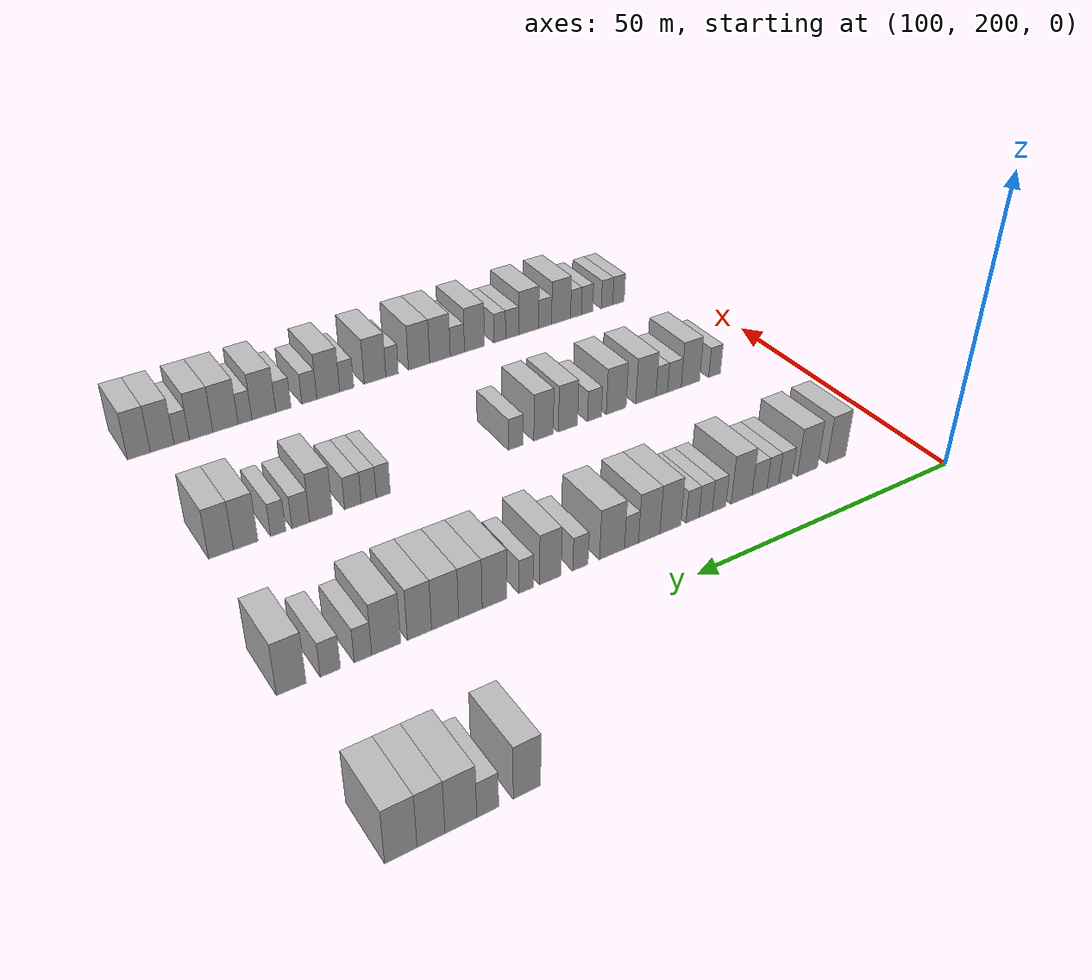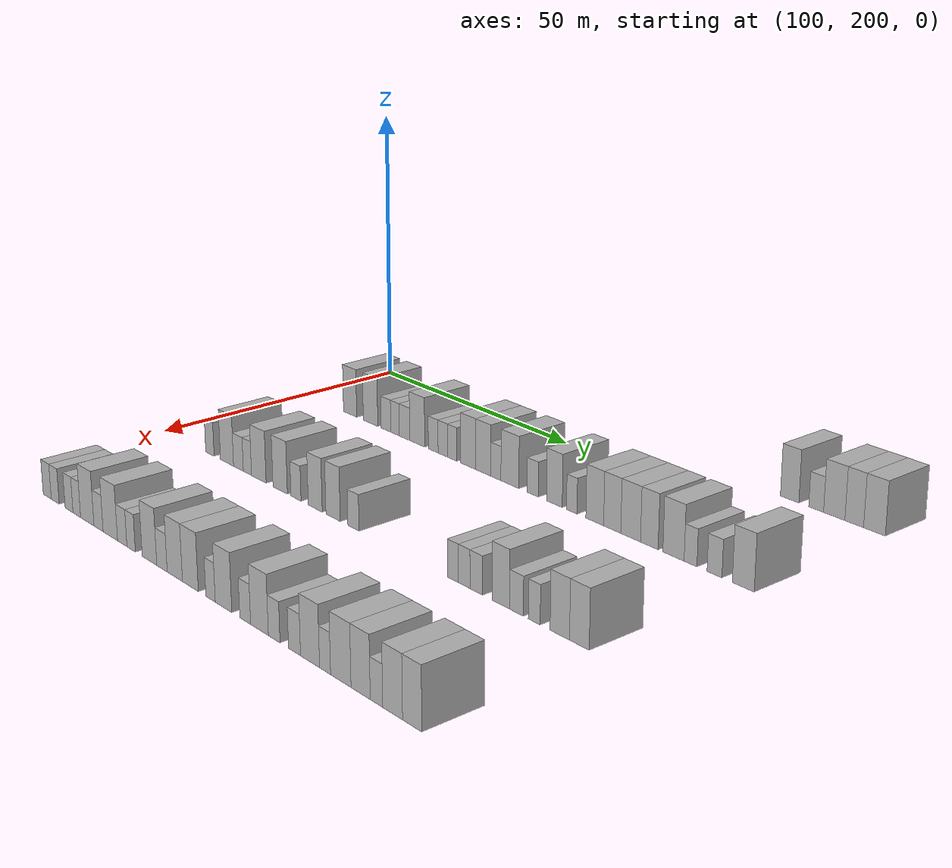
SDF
<sdf version="1.6">
 <world name="default">
  <model name="building_665">
   <static>1</static>
   <pose>85.0000 291.4615 0 0.000000 0.000000 0.000000</pose>
   <link name="link">
    <pose>0 0 4.50 0 0 0</pose>
    <collision name="collision"><geometry><box><size>10.0000 3.8084 9.0000</size></box></geometry></collision>
    <visual name="visual">
     <cast_shadows>0</cast_shadows>
     <geometry><box><size>10.0000 3.8084 9.0000</size></box></geometry>
     <material>
      <script>
       <uri>model://HANNAS_wall/materials/scripts</uri>
       <uri>model://HANNAS_wall/materials/textures</uri>
       <name>vrc/HANNAS_wall</name>
      </script>
     </material>
    </visual>
   </link>
  </model>
  <model name="building_666">
   <static>1</static>
   <pose>85.0000 296.8567 0 0.000000 0.000000 0.000000</pose>
   <link name="link">
    <pose>0 0 3.00 0 0 0</pose>
    <collision name="collision"><geometry><box><size>10.0000 2.9822 6.0000</size></box></geometry></collision>
    <visual name="visual">
     <cast_shadows>0</cast_shadows>
     <geometry><box><size>10.0000 2.9822 6.0000</size></box></geometry>
     <material>
      <script>
       <uri>model://HANNAS_wall/materials/scripts</uri>
       <uri>model://HANNAS_wall/materials/textures</uri>
       <name>vrc/HANNAS_wall</name>
      </script>
     </material>
    </visual>
   </link>
  </model>
  <model name="building_667">
   <static>1</static>
   <pose>85.0000 300.4469 0 0.000000 0.000000 0.000000</pose>
   <link name="link">
    <pose>0 0 4.50 0 0 0</pose>
    <collision name="collision"><geometry><box><size>10.0000 4.1982 9.0000</size></box></geometry></collision>
    <visual name="visual">
     <cast_shadows>0</cast_shadows>
     <geometry><box><size>10.0000 4.1982 9.0000</size></box></geometry>
     <material>
      <script>
       <uri>model://HANNAS_wall/materials/scripts</uri>
       <uri>model://HANNAS_wall/materials/textures</uri>
       <name>vrc/HANNAS_wall</name>
      </script>
     </material>
    </visual>
   </link>
  </model>
  <model name="building_668">
   <static>1</static>
   <pose>85.0000 304.3509 0 0.000000 0.000000 0.000000</pose>
   <link name="link">
    <pose>0 0 4.50 0 0 0</pose>
    <collision name="collision"><geometry><box><size>10.0000 3.6098 9.0000</size></box></geometry></collision>
    <visual name="visual">
     <cast_shadows>0</cast_shadows>
     <geometry><box><size>10.0000 3.6098 9.0000</size></box></geometry>
     <material>
      <script>
       <uri>model://HANNAS_wall/materials/scripts</uri>
       <uri>model://HANNAS_wall/materials/textures</uri>
       <name>vrc/HANNAS_wall</name>
      </script>
     </material>
    </visual>
   </link>
  </model>
  <model name="building_669">
   <static>1</static>
   <pose>85.0000 308.2140 0 0.000000 0.000000 0.000000</pose>
   <link name="link">
    <pose>0 0 4.50 0 0 0</pose>
    <collision name="collision"><geometry><box><size>10.0000 4.1164 9.0000</size></box></geometry></collision>
    <visual name="visual">
     <cast_shadows>0</cast_shadows>
     <geometry><box><size>10.0000 4.1164 9.0000</size></box></geometry>
     <material>
      <script>
       <uri>model://HANNAS_wall/materials/scripts</uri>
       <uri>model://HANNAS_wall/materials/textures</uri>
       <name>vrc/HANNAS_wall</name>
      </script>
     </material>
    </visual>
   </link>
  </model>
  <model name="building_886">
   <static>1</static>
   <pose>115.0000 214.0622 0 0.000000 0.000000 0.000000</pose>
   <link name="link">
    <pose>0 0 4.50 0 0 0</pose>
    <collision name="collision"><geometry><box><size>10.0000 4.0102 9.0000</size></box></geometry></collision>
    <visual name="visual">
     <cast_shadows>0</cast_shadows>
     <geometry><box><size>10.0000 4.0102 9.0000</size></box></geometry>
     <material>
      <script>
       <uri>model://HANNAS_wall/materials/scripts</uri>
       <uri>model://HANNAS_wall/materials/textures</uri>
       <name>vrc/HANNAS_wall</name>
      </script>
     </material>
    </visual>
   </link>
  </model>
  <model name="building_887">
   <static>1</static>
   <pose>115.0000 220.2074 0 0.000000 0.000000 0.000000</pose>
   <link name="link">
    <pose>0 0 4.50 0 0 0</pose>
    <collision name="collision"><geometry><box><size>10.0000 4.2802 9.0000</size></box></geometry></collision>
    <visual name="visual">
     <cast_shadows>0</cast_shadows>
     <geometry><box><size>10.0000 4.2802 9.0000</size></box></geometry>
     <material>
      <script>
       <uri>model://HANNAS_wall/materials/scripts</uri>
       <uri>model://HANNAS_wall/materials/textures</uri>
       <name>vrc/HANNAS_wall</name>
      </script>
     </material>
    </visual>
   </link>
  </model>
  <model name="building_888">
   <static>1</static>
   <pose>115.0000 224.7398 0 0.000000 0.000000 0.000000</pose>
   <link name="link">
    <pose>0 0 3.00 0 0 0</pose>
    <collision name="collision"><geometry><box><size>10.0000 2.7845 6.0000</size></box></geometry></collision>
    <visual name="visual">
     <cast_shadows>0</cast_shadows>
     <geometry><box><size>10.0000 2.7845 6.0000</size></box></geometry>
     <material>
      <script>
       <uri>model://HANNAS_wall/materials/scripts</uri>
       <uri>model://HANNAS_wall/materials/textures</uri>
       <name>vrc/HANNAS_wall</name>
      </script>
     </material>
    </visual>
   </link>
  </model>
  <model name="building_889">
   <static>1</static>
   <pose>115.0000 227.3388 0 0.000000 0.000000 0.000000</pose>
   <link name="link">
    <pose>0 0 3.00 0 0 0</pose>
    <collision name="collision"><geometry><box><size>10.0000 2.4136 6.0000</size></box></geometry></collision>
    <visual name="visual">
     <cast_shadows>0</cast_shadows>
     <geometry><box><size>10.0000 2.4136 6.0000</size></box></geometry>
     <material>
      <script>
       <uri>model://HANNAS_wall/materials/scripts</uri>
       <uri>model://HANNAS_wall/materials/textures</uri>
       <name>vrc/HANNAS_wall</name>
      </script>
     </material>
    </visual>
   </link>
  </model>
  <model name="building_890">
   <static>1</static>
   <pose>115.0000 230.0455 0 0.000000 0.000000 0.000000</pose>
   <link name="link">
    <pose>0 0 3.00 0 0 0</pose>
    <collision name="collision"><geometry><box><size>10.0000 2.9999 6.0000</size></box></geometry></collision>
    <visual name="visual">
     <cast_shadows>0</cast_shadows>
     <geometry><box><size>10.0000 2.9999 6.0000</size></box></geometry>
     <material>
      <script>
       <uri>model://HANNAS_wall/materials/scripts</uri>
       <uri>model://HANNAS_wall/materials/textures</uri>
       <name>vrc/HANNAS_wall</name>
      </script>
     </material>
    </visual>
   </link>
  </model>
  <model name="building_891">
   <static>1</static>
   <pose>115.0000 233.6323 0 0.000000 0.000000 0.000000</pose>
   <link name="link">
    <pose>0 0 4.50 0 0 0</pose>
    <collision name="collision"><geometry><box><size>10.0000 4.1736 9.0000</size></box></geometry></collision>
    <visual name="visual">
     <cast_shadows>0</cast_shadows>
     <geometry><box><size>10.0000 4.1736 9.0000</size></box></geometry>
     <material>
      <script>
       <uri>model://HANNAS_wall/materials/scripts</uri>
       <uri>model://HANNAS_wall/materials/textures</uri>
       <name>vrc/HANNAS_wall</name>
      </script>
     </material>
    </visual>
   </link>
  </model>
  <model name="building_892">
   <static>1</static>
   <pose>115.0000 238.0502 0 0.000000 0.000000 0.000000</pose>
   <link name="link">
    <pose>0 0 3.00 0 0 0</pose>
    <collision name="collision"><geometry><box><size>10.0000 2.6622 6.0000</size></box></geometry></collision>
    <visual name="visual">
     <cast_shadows>0</cast_shadows>
     <geometry><box><size>10.0000 2.6622 6.0000</size></box></geometry>
     <material>
      <script>
       <uri>model://HANNAS_wall/materials/scripts</uri>
       <uri>model://HANNAS_wall/materials/textures</uri>
       <name>vrc/HANNAS_wall</name>
      </script>
     </material>
    </visual>
   </link>
  </model>
  <model name="building_893">
   <static>1</static>
   <pose>115.0000 240.6500 0 0.000000 0.000000 0.000000</pose>
   <link name="link">
    <pose>0 0 3.00 0 0 0</pose>
    <collision name="collision"><geometry><box><size>10.0000 2.5374 6.0000</size></box></geometry></collision>
    <visual name="visual">
     <cast_shadows>0</cast_shadows>
     <geometry><box><size>10.0000 2.5374 6.0000</size></box></geometry>
     <material>
      <script>
       <uri>model://HANNAS_wall/materials/scripts</uri>
       <uri>model://HANNAS_wall/materials/textures</uri>
       <name>vrc/HANNAS_wall</name>
      </script>
     </material>
    </visual>
   </link>
  </model>
  <model name="building_894">
   <static>1</static>
   <pose>115.0000 243.1583 0 0.000000 0.000000 0.000000</pose>
   <link name="link">
    <pose>0 0 3.00 0 0 0</pose>
    <collision name="collision"><geometry><box><size>10.0000 2.4791 6.0000</size></box></geometry></collision>
    <visual name="visual">
     <cast_shadows>0</cast_shadows>
     <geometry><box><size>10.0000 2.4791 6.0000</size></box></geometry>
     <material>
      <script>
       <uri>model://HANNAS_wall/materials/scripts</uri>
       <uri>model://HANNAS_wall/materials/textures</uri>
       <name>vrc/HANNAS_wall</name>
      </script>
     </material>
    </visual>
   </link>
  </model>
  <model name="building_895">
   <static>1</static>
   <pose>115.0000 247.3582 0 0.000000 0.000000 0.000000</pose>
   <link name="link">
    <pose>0 0 4.50 0 0 0</pose>
    <collision name="collision"><geometry><box><size>10.0000 3.9207 9.0000</size></box></geometry></collision>
    <visual name="visual">
     <cast_shadows>0</cast_shadows>
     <geometry><box><size>10.0000 3.9207 9.0000</size></box></geometry>
     <material>
      <script>
       <uri>model://HANNAS_wall/materials/scripts</uri>
       <uri>model://HANNAS_wall/materials/textures</uri>
       <name>vrc/HANNAS_wall</name>
      </script>
     </material>
    </visual>
   </link>
  </model>
  <model name="building_896">
   <static>1</static>
   <pose>115.0000 251.2783 0 0.000000 0.000000 0.000000</pose>
   <link name="link">
    <pose>0 0 4.50 0 0 0</pose>
    <collision name="collision"><geometry><box><size>10.0000 3.9194 9.0000</size></box></geometry></collision>
    <visual name="visual">
     <cast_shadows>0</cast_shadows>
     <geometry><box><size>10.0000 3.9194 9.0000</size></box></geometry>
     <material>
      <script>
       <uri>model://HANNAS_wall/materials/scripts</uri>
       <uri>model://HANNAS_wall/materials/textures</uri>
       <name>vrc/HANNAS_wall</name>
      </script>
     </material>
    </visual>
   </link>
  </model>
  <model name="building_897">
   <static>1</static>
   <pose>115.0000 254.4890 0 0.000000 0.000000 0.000000</pose>
   <link name="link">
    <pose>0 0 3.00 0 0 0</pose>
    <collision name="collision"><geometry><box><size>10.0000 2.5019 6.0000</size></box></geometry></collision>
    <visual name="visual">
     <cast_shadows>0</cast_shadows>
     <geometry><box><size>10.0000 2.5019 6.0000</size></box></geometry>
     <material>
      <script>
       <uri>model://HANNAS_wall/materials/scripts</uri>
       <uri>model://HANNAS_wall/materials/textures</uri>
       <name>vrc/HANNAS_wall</name>
      </script>
     </material>
    </visual>
   </link>
  </model>
  <model name="building_898">
   <static>1</static>
   <pose>115.0000 257.9615 0 0.000000 0.000000 0.000000</pose>
   <link name="link">
    <pose>0 0 4.50 0 0 0</pose>
    <collision name="collision"><geometry><box><size>10.0000 4.4431 9.0000</size></box></geometry></collision>
    <visual name="visual">
     <cast_shadows>0</cast_shadows>
     <geometry><box><size>10.0000 4.4431 9.0000</size></box></geometry>
     <material>
      <script>
       <uri>model://HANNAS_wall/materials/scripts</uri>
       <uri>model://HANNAS_wall/materials/textures</uri>
       <name>vrc/HANNAS_wall</name>
      </script>
     </material>
    </visual>
   </link>
  </model>
  <model name="building_899">
   <static>1</static>
   <pose>115.0000 263.5110 0 0.000000 0.000000 0.000000</pose>
   <link name="link">
    <pose>0 0 3.00 0 0 0</pose>
    <collision name="collision"><geometry><box><size>10.0000 2.6561 6.0000</size></box></geometry></collision>
    <visual name="visual">
     <cast_shadows>0</cast_shadows>
     <geometry><box><size>10.0000 2.6561 6.0000</size></box></geometry>
     <material>
      <script>
       <uri>model://HANNAS_wall/materials/scripts</uri>
       <uri>model://HANNAS_wall/materials/textures</uri>
       <name>vrc/HANNAS_wall</name>
      </script>
     </material>
    </visual>
   </link>
  </model>
  <model name="building_900">
   <static>1</static>
   <pose>115.0000 268.6723 0 0.000000 0.000000 0.000000</pose>
   <link name="link">
    <pose>0 0 4.50 0 0 0</pose>
    <collision name="collision"><geometry><box><size>10.0000 3.6664 9.0000</size></box></geometry></collision>
    <visual name="visual">
     <cast_shadows>0</cast_shadows>
     <geometry><box><size>10.0000 3.6664 9.0000</size></box></geometry>
     <material>
      <script>
       <uri>model://HANNAS_wall/materials/scripts</uri>
       <uri>model://HANNAS_wall/materials/textures</uri>
       <name>vrc/HANNAS_wall</name>
      </script>
     </material>
    </visual>
   </link>
  </model>
  <model name="building_901">
   <static>1</static>
   <pose>115.0000 272.7105 0 0.000000 0.000000 0.000000</pose>
   <link name="link">
    <pose>0 0 3.00 0 0 0</pose>
    <collision name="collision"><geometry><box><size>10.0000 2.4101 6.0000</size></box></geometry></collision>
    <visual name="visual">
     <cast_shadows>0</cast_shadows>
     <geometry><box><size>10.0000 2.4101 6.0000</size></box></geometry>
     <material>
      <script>
       <uri>model://HANNAS_wall/materials/scripts</uri>
       <uri>model://HANNAS_wall/materials/textures</uri>
       <name>vrc/HANNAS_wall</name>
      </script>
     </material>
    </visual>
   </link>
  </model>
  <model name="building_902">
   <static>1</static>
   <pose>115.0000 277.8994 0 0.000000 0.000000 0.000000</pose>
   <link name="link">
    <pose>0 0 4.50 0 0 0</pose>
    <collision name="collision"><geometry><box><size>10.0000 3.9677 9.0000</size></box></geometry></collision>
    <visual name="visual">
     <cast_shadows>0</cast_shadows>
     <geometry><box><size>10.0000 3.9677 9.0000</size></box></geometry>
     <material>
      <script>
       <uri>model://HANNAS_wall/materials/scripts</uri>
       <uri>model://HANNAS_wall/materials/textures</uri>
       <name>vrc/HANNAS_wall</name>
      </script>
     </material>
    </visual>
   </link>
  </model>
  <model name="building_903">
   <static>1</static>
   <pose>115.0000 281.7571 0 0.000000 0.000000 0.000000</pose>
   <link name="link">
    <pose>0 0 4.50 0 0 0</pose>
    <collision name="collision"><geometry><box><size>10.0000 3.7477 9.0000</size></box></geometry></collision>
    <visual name="visual">
     <cast_shadows>0</cast_shadows>
     <geometry><box><size>10.0000 3.7477 9.0000</size></box></geometry>
     <material>
      <script>
       <uri>model://HANNAS_wall/materials/scripts</uri>
       <uri>model://HANNAS_wall/materials/textures</uri>
       <name>vrc/HANNAS_wall</name>
      </script>
     </material>
    </visual>
   </link>
  </model>
  <model name="building_904">
   <static>1</static>
   <pose>115.0000 285.7416 0 0.000000 0.000000 0.000000</pose>
   <link name="link">
    <pose>0 0 4.50 0 0 0</pose>
    <collision name="collision"><geometry><box><size>10.0000 4.2212 9.0000</size></box></geometry></collision>
    <visual name="visual">
     <cast_shadows>0</cast_shadows>
     <geometry><box><size>10.0000 4.2212 9.0000</size></box></geometry>
     <material>
      <script>
       <uri>model://HANNAS_wall/materials/scripts</uri>
       <uri>model://HANNAS_wall/materials/textures</uri>
       <name>vrc/HANNAS_wall</name>
      </script>
     </material>
    </visual>
   </link>
  </model>
  <model name="building_905">
   <static>1</static>
   <pose>115.0000 289.6984 0 0.000000 0.000000 0.000000</pose>
   <link name="link">
    <pose>0 0 4.50 0 0 0</pose>
    <collision name="collision"><geometry><box><size>10.0000 3.6924 9.0000</size></box></geometry></collision>
    <visual name="visual">
     <cast_shadows>0</cast_shadows>
     <geometry><box><size>10.0000 3.6924 9.0000</size></box></geometry>
     <material>
      <script>
       <uri>model://HANNAS_wall/materials/scripts</uri>
       <uri>model://HANNAS_wall/materials/textures</uri>
       <name>vrc/HANNAS_wall</name>
      </script>
     </material>
    </visual>
   </link>
  </model>
  <model name="building_906">
   <static>1</static>
   <pose>115.0000 294.7048 0 0.000000 0.000000 0.000000</pose>
   <link name="link">
    <pose>0 0 4.50 0 0 0</pose>
    <collision name="collision"><geometry><box><size>10.0000 4.3206 9.0000</size></box></geometry></collision>
    <visual name="visual">
     <cast_shadows>0</cast_shadows>
     <geometry><box><size>10.0000 4.3206 9.0000</size></box></geometry>
     <material>
      <script>
       <uri>model://HANNAS_wall/materials/scripts</uri>
       <uri>model://HANNAS_wall/materials/textures</uri>
       <name>vrc/HANNAS_wall</name>
      </script>
     </material>
    </visual>
   </link>
  </model>
  <model name="building_907">
   <static>1</static>
   <pose>115.0000 298.1446 0 0.000000 0.000000 0.000000</pose>
   <link name="link">
    <pose>0 0 3.00 0 0 0</pose>
    <collision name="collision"><geometry><box><size>10.0000 2.5590 6.0000</size></box></geometry></collision>
    <visual name="visual">
     <cast_shadows>0</cast_shadows>
     <geometry><box><size>10.0000 2.5590 6.0000</size></box></geometry>
     <material>
      <script>
       <uri>model://HANNAS_wall/materials/scripts</uri>
       <uri>model://HANNAS_wall/materials/textures</uri>
       <name>vrc/HANNAS_wall</name>
      </script>
     </material>
    </visual>
   </link>
  </model>
  <model name="building_908">
   <static>1</static>
   <pose>115.0000 302.8704 0 0.000000 0.000000 0.000000</pose>
   <link name="link">
    <pose>0 0 3.00 0 0 0</pose>
    <collision name="collision"><geometry><box><size>10.0000 2.8927 6.0000</size></box></geometry></collision>
    <visual name="visual">
     <cast_shadows>0</cast_shadows>
     <geometry><box><size>10.0000 2.8927 6.0000</size></box></geometry>
     <material>
      <script>
       <uri>model://HANNAS_wall/materials/scripts</uri>
       <uri>model://HANNAS_wall/materials/textures</uri>
       <name>vrc/HANNAS_wall</name>
      </script>
     </material>
    </visual>
   </link>
  </model>
  <model name="building_909">
   <static>1</static>
   <pose>115.0000 308.3861 0 0.000000 0.000000 0.000000</pose>
   <link name="link">
    <pose>0 0 4.50 0 0 0</pose>
    <collision name="collision"><geometry><box><size>10.0000 4.1386 9.0000</size></box></geometry></collision>
    <visual name="visual">
     <cast_shadows>0</cast_shadows>
     <geometry><box><size>10.0000 4.1386 9.0000</size></box></geometry>
     <material>
      <script>
       <uri>model://HANNAS_wall/materials/scripts</uri>
       <uri>model://HANNAS_wall/materials/textures</uri>
       <name>vrc/HANNAS_wall</name>
      </script>
     </material>
    </visual>
   </link>
  </model>
  <model name="building_1110">
   <static>1</static>
   <pose>145.0000 214.6955 0 0.000000 0.000000 0.000000</pose>
   <link name="link">
    <pose>0 0 3.00 0 0 0</pose>
    <collision name="collision"><geometry><box><size>10.0000 2.6549 6.0000</size></box></geometry></collision>
    <visual name="visual">
     <cast_shadows>0</cast_shadows>
     <geometry><box><size>10.0000 2.6549 6.0000</size></box></geometry>
     <material>
      <script>
       <uri>model://HANNAS_wall/materials/scripts</uri>
       <uri>model://HANNAS_wall/materials/textures</uri>
       <name>vrc/HANNAS_wall</name>
      </script>
     </material>
    </visual>
   </link>
  </model>
  <model name="building_1111">
   <static>1</static>
   <pose>145.0000 220.0509 0 0.000000 0.000000 0.000000</pose>
   <link name="link">
    <pose>0 0 4.50 0 0 0</pose>
    <collision name="collision"><geometry><box><size>10.0000 4.0558 9.0000</size></box></geometry></collision>
    <visual name="visual">
     <cast_shadows>0</cast_shadows>
     <geometry><box><size>10.0000 4.0558 9.0000</size></box></geometry>
     <material>
      <script>
       <uri>model://HANNAS_wall/materials/scripts</uri>
       <uri>model://HANNAS_wall/materials/textures</uri>
       <name>vrc/HANNAS_wall</name>
      </script>
     </material>
    </visual>
   </link>
  </model>
  <model name="building_1112">
   <static>1</static>
   <pose>145.0000 223.5687 0 0.000000 0.000000 0.000000</pose>
   <link name="link">
    <pose>0 0 3.00 0 0 0</pose>
    <collision name="collision"><geometry><box><size>10.0000 2.9798 6.0000</size></box></geometry></collision>
    <visual name="visual">
     <cast_shadows>0</cast_shadows>
     <geometry><box><size>10.0000 2.9798 6.0000</size></box></geometry>
     <material>
      <script>
       <uri>model://HANNAS_wall/materials/scripts</uri>
       <uri>model://HANNAS_wall/materials/textures</uri>
       <name>vrc/HANNAS_wall</name>
      </script>
     </material>
    </visual>
   </link>
  </model>
  <model name="building_1113">
   <static>1</static>
   <pose>145.0000 226.2888 0 0.000000 0.000000 0.000000</pose>
   <link name="link">
    <pose>0 0 3.00 0 0 0</pose>
    <collision name="collision"><geometry><box><size>10.0000 2.4603 6.0000</size></box></geometry></collision>
    <visual name="visual">
     <cast_shadows>0</cast_shadows>
     <geometry><box><size>10.0000 2.4603 6.0000</size></box></geometry>
     <material>
      <script>
       <uri>model://HANNAS_wall/materials/scripts</uri>
       <uri>model://HANNAS_wall/materials/textures</uri>
       <name>vrc/HANNAS_wall</name>
      </script>
     </material>
    </visual>
   </link>
  </model>
  <model name="building_1114">
   <static>1</static>
   <pose>145.0000 229.6744 0 0.000000 0.000000 0.000000</pose>
   <link name="link">
    <pose>0 0 4.50 0 0 0</pose>
    <collision name="collision"><geometry><box><size>10.0000 4.3110 9.0000</size></box></geometry></collision>
    <visual name="visual">
     <cast_shadows>0</cast_shadows>
     <geometry><box><size>10.0000 4.3110 9.0000</size></box></geometry>
     <material>
      <script>
       <uri>model://HANNAS_wall/materials/scripts</uri>
       <uri>model://HANNAS_wall/materials/textures</uri>
       <name>vrc/HANNAS_wall</name>
      </script>
     </material>
    </visual>
   </link>
  </model>
  <model name="building_1115">
   <static>1</static>
   <pose>145.0000 235.8943 0 0.000000 0.000000 0.000000</pose>
   <link name="link">
    <pose>0 0 4.50 0 0 0</pose>
    <collision name="collision"><geometry><box><size>10.0000 4.1287 9.0000</size></box></geometry></collision>
    <visual name="visual">
     <cast_shadows>0</cast_shadows>
     <geometry><box><size>10.0000 4.1287 9.0000</size></box></geometry>
     <material>
      <script>
       <uri>model://HANNAS_wall/materials/scripts</uri>
       <uri>model://HANNAS_wall/materials/textures</uri>
       <name>vrc/HANNAS_wall</name>
      </script>
     </material>
    </visual>
   </link>
  </model>
  <model name="building_1116">
   <static>1</static>
   <pose>145.0000 240.3722 0 0.000000 0.000000 0.000000</pose>
   <link name="link">
    <pose>0 0 3.00 0 0 0</pose>
    <collision name="collision"><geometry><box><size>10.0000 2.8273 6.0000</size></box></geometry></collision>
    <visual name="visual">
     <cast_shadows>0</cast_shadows>
     <geometry><box><size>10.0000 2.8273 6.0000</size></box></geometry>
     <material>
      <script>
       <uri>model://HANNAS_wall/materials/scripts</uri>
       <uri>model://HANNAS_wall/materials/textures</uri>
       <name>vrc/HANNAS_wall</name>
      </script>
     </material>
    </visual>
   </link>
  </model>
  <model name="building_1117">
   <static>1</static>
   <pose>145.0000 245.6896 0 0.000000 0.000000 0.000000</pose>
   <link name="link">
    <pose>0 0 4.50 0 0 0</pose>
    <collision name="collision"><geometry><box><size>10.0000 3.8074 9.0000</size></box></geometry></collision>
    <visual name="visual">
     <cast_shadows>0</cast_shadows>
     <geometry><box><size>10.0000 3.8074 9.0000</size></box></geometry>
     <material>
      <script>
       <uri>model://HANNAS_wall/materials/scripts</uri>
       <uri>model://HANNAS_wall/materials/textures</uri>
       <name>vrc/HANNAS_wall</name>
      </script>
     </material>
    </visual>
   </link>
  </model>
  <model name="building_1118">
   <static>1</static>
   <pose>145.0000 250.4878 0 0.000000 0.000000 0.000000</pose>
   <link name="link">
    <pose>0 0 4.50 0 0 0</pose>
    <collision name="collision"><geometry><box><size>10.0000 3.7890 9.0000</size></box></geometry></collision>
    <visual name="visual">
     <cast_shadows>0</cast_shadows>
     <geometry><box><size>10.0000 3.7890 9.0000</size></box></geometry>
     <material>
      <script>
       <uri>model://HANNAS_wall/materials/scripts</uri>
       <uri>model://HANNAS_wall/materials/textures</uri>
       <name>vrc/HANNAS_wall</name>
      </script>
     </material>
    </visual>
   </link>
  </model>
  <model name="building_1119">
   <static>1</static>
   <pose>145.0000 255.8205 0 0.000000 0.000000 0.000000</pose>
   <link name="link">
    <pose>0 0 3.00 0 0 0</pose>
    <collision name="collision"><geometry><box><size>10.0000 2.8764 6.0000</size></box></geometry></collision>
    <visual name="visual">
     <cast_shadows>0</cast_shadows>
     <geometry><box><size>10.0000 2.8764 6.0000</size></box></geometry>
     <material>
      <script>
       <uri>model://HANNAS_wall/materials/scripts</uri>
       <uri>model://HANNAS_wall/materials/textures</uri>
       <name>vrc/HANNAS_wall</name>
      </script>
     </material>
    </visual>
   </link>
  </model>
  <model name="building_1120">
   <static>1</static>
   <pose>145.0000 279.8850 0 0.000000 0.000000 0.000000</pose>
   <link name="link">
    <pose>0 0 3.00 0 0 0</pose>
    <collision name="collision"><geometry><box><size>10.0000 2.4175 6.0000</size></box></geometry></collision>
    <visual name="visual">
     <cast_shadows>0</cast_shadows>
     <geometry><box><size>10.0000 2.4175 6.0000</size></box></geometry>
     <material>
      <script>
       <uri>model://HANNAS_wall/materials/scripts</uri>
       <uri>model://HANNAS_wall/materials/textures</uri>
       <name>vrc/HANNAS_wall</name>
      </script>
     </material>
    </visual>
   </link>
  </model>
  <model name="building_1121">
   <static>1</static>
   <pose>145.0000 282.3784 0 0.000000 0.000000 0.000000</pose>
   <link name="link">
    <pose>0 0 3.00 0 0 0</pose>
    <collision name="collision"><geometry><box><size>10.0000 2.5692 6.0000</size></box></geometry></collision>
    <visual name="visual">
     <cast_shadows>0</cast_shadows>
     <geometry><box><size>10.0000 2.5692 6.0000</size></box></geometry>
     <material>
      <script>
       <uri>model://HANNAS_wall/materials/scripts</uri>
       <uri>model://HANNAS_wall/materials/textures</uri>
       <name>vrc/HANNAS_wall</name>
      </script>
     </material>
    </visual>
   </link>
  </model>
  <model name="building_1122">
   <static>1</static>
   <pose>145.0000 285.0607 0 0.000000 0.000000 0.000000</pose>
   <link name="link">
    <pose>0 0 3.00 0 0 0</pose>
    <collision name="collision"><geometry><box><size>10.0000 2.7952 6.0000</size></box></geometry></collision>
    <visual name="visual">
     <cast_shadows>0</cast_shadows>
     <geometry><box><size>10.0000 2.7952 6.0000</size></box></geometry>
     <material>
      <script>
       <uri>model://HANNAS_wall/materials/scripts</uri>
       <uri>model://HANNAS_wall/materials/textures</uri>
       <name>vrc/HANNAS_wall</name>
      </script>
     </material>
    </visual>
   </link>
  </model>
  <model name="building_1123">
   <static>1</static>
   <pose>145.0000 290.3460 0 0.000000 0.000000 0.000000</pose>
   <link name="link">
    <pose>0 0 4.50 0 0 0</pose>
    <collision name="collision"><geometry><box><size>10.0000 3.7754 9.0000</size></box></geometry></collision>
    <visual name="visual">
     <cast_shadows>0</cast_shadows>
     <geometry><box><size>10.0000 3.7754 9.0000</size></box></geometry>
     <material>
      <script>
       <uri>model://HANNAS_wall/materials/scripts</uri>
       <uri>model://HANNAS_wall/materials/textures</uri>
       <name>vrc/HANNAS_wall</name>
      </script>
     </material>
    </visual>
   </link>
  </model>
  <model name="building_1124">
   <static>1</static>
   <pose>145.0000 293.6671 0 0.000000 0.000000 0.000000</pose>
   <link name="link">
    <pose>0 0 3.00 0 0 0</pose>
    <collision name="collision"><geometry><box><size>10.0000 2.8669 6.0000</size></box></geometry></collision>
    <visual name="visual">
     <cast_shadows>0</cast_shadows>
     <geometry><box><size>10.0000 2.8669 6.0000</size></box></geometry>
     <material>
      <script>
       <uri>model://HANNAS_wall/materials/scripts</uri>
       <uri>model://HANNAS_wall/materials/textures</uri>
       <name>vrc/HANNAS_wall</name>
      </script>
     </material>
    </visual>
   </link>
  </model>
  <model name="building_1125">
   <static>1</static>
   <pose>145.0000 297.3152 0 0.000000 0.000000 0.000000</pose>
   <link name="link">
    <pose>0 0 3.00 0 0 0</pose>
    <collision name="collision"><geometry><box><size>10.0000 2.4295 6.0000</size></box></geometry></collision>
    <visual name="visual">
     <cast_shadows>0</cast_shadows>
     <geometry><box><size>10.0000 2.4295 6.0000</size></box></geometry>
     <material>
      <script>
       <uri>model://HANNAS_wall/materials/scripts</uri>
       <uri>model://HANNAS_wall/materials/textures</uri>
       <name>vrc/HANNAS_wall</name>
      </script>
     </material>
    </visual>
   </link>
  </model>
  <model name="building_1126">
   <static>1</static>
   <pose>145.0000 302.4486 0 0.000000 0.000000 0.000000</pose>
   <link name="link">
    <pose>0 0 4.50 0 0 0</pose>
    <collision name="collision"><geometry><box><size>10.0000 3.8373 9.0000</size></box></geometry></collision>
    <visual name="visual">
     <cast_shadows>0</cast_shadows>
     <geometry><box><size>10.0000 3.8373 9.0000</size></box></geometry>
     <material>
      <script>
       <uri>model://HANNAS_wall/materials/scripts</uri>
       <uri>model://HANNAS_wall/materials/textures</uri>
       <name>vrc/HANNAS_wall</name>
      </script>
     </material>
    </visual>
   </link>
  </model>
  <model name="building_1127">
   <static>1</static>
   <pose>145.0000 306.2738 0 0.000000 0.000000 0.000000</pose>
   <link name="link">
    <pose>0 0 4.50 0 0 0</pose>
    <collision name="collision"><geometry><box><size>10.0000 3.8130 9.0000</size></box></geometry></collision>
    <visual name="visual">
     <cast_shadows>0</cast_shadows>
     <geometry><box><size>10.0000 3.8130 9.0000</size></box></geometry>
     <material>
      <script>
       <uri>model://HANNAS_wall/materials/scripts</uri>
       <uri>model://HANNAS_wall/materials/textures</uri>
       <name>vrc/HANNAS_wall</name>
      </script>
     </material>
    </visual>
   </link>
  </model>
  <model name="building_1325">
   <static>1</static>
   <pose>175.0000 214.0327 0 0.000000 0.000000 0.000000</pose>
   <link name="link">
    <pose>0 0 3.00 0 0 0</pose>
    <collision name="collision"><geometry><box><size>10.0000 2.7262 6.0000</size></box></geometry></collision>
    <visual name="visual">
     <cast_shadows>0</cast_shadows>
     <geometry><box><size>10.0000 2.7262 6.0000</size></box></geometry>
     <material>
      <script>
       <uri>model://HANNAS_wall/materials/scripts</uri>
       <uri>model://HANNAS_wall/materials/textures</uri>
       <name>vrc/HANNAS_wall</name>
      </script>
     </material>
    </visual>
   </link>
  </model>
  <model name="building_1326">
   <static>1</static>
   <pose>175.0000 216.7307 0 0.000000 0.000000 0.000000</pose>
   <link name="link">
    <pose>0 0 3.00 0 0 0</pose>
    <collision name="collision"><geometry><box><size>10.0000 2.6699 6.0000</size></box></geometry></collision>
    <visual name="visual">
     <cast_shadows>0</cast_shadows>
     <geometry><box><size>10.0000 2.6699 6.0000</size></box></geometry>
     <material>
      <script>
       <uri>model://HANNAS_wall/materials/scripts</uri>
       <uri>model://HANNAS_wall/materials/textures</uri>
       <name>vrc/HANNAS_wall</name>
      </script>
     </material>
    </visual>
   </link>
  </model>
  <model name="building_1327">
   <static>1</static>
   <pose>175.0000 221.3533 0 0.000000 0.000000 0.000000</pose>
   <link name="link">
    <pose>0 0 3.00 0 0 0</pose>
    <collision name="collision"><geometry><box><size>10.0000 2.5752 6.0000</size></box></geometry></collision>
    <visual name="visual">
     <cast_shadows>0</cast_shadows>
     <geometry><box><size>10.0000 2.5752 6.0000</size></box></geometry>
     <material>
      <script>
       <uri>model://HANNAS_wall/materials/scripts</uri>
       <uri>model://HANNAS_wall/materials/textures</uri>
       <name>vrc/HANNAS_wall</name>
      </script>
     </material>
    </visual>
   </link>
  </model>
  <model name="building_1328">
   <static>1</static>
   <pose>175.0000 223.8747 0 0.000000 0.000000 0.000000</pose>
   <link name="link">
    <pose>0 0 3.00 0 0 0</pose>
    <collision name="collision"><geometry><box><size>10.0000 2.4678 6.0000</size></box></geometry></collision>
    <visual name="visual">
     <cast_shadows>0</cast_shadows>
     <geometry><box><size>10.0000 2.4678 6.0000</size></box></geometry>
     <material>
      <script>
       <uri>model://HANNAS_wall/materials/scripts</uri>
       <uri>model://HANNAS_wall/materials/textures</uri>
       <name>vrc/HANNAS_wall</name>
      </script>
     </material>
    </visual>
   </link>
  </model>
  <model name="building_1329">
   <static>1</static>
   <pose>175.0000 227.2427 0 0.000000 0.000000 0.000000</pose>
   <link name="link">
    <pose>0 0 4.50 0 0 0</pose>
    <collision name="collision"><geometry><box><size>10.0000 4.2682 9.0000</size></box></geometry></collision>
    <visual name="visual">
     <cast_shadows>0</cast_shadows>
     <geometry><box><size>10.0000 4.2682 9.0000</size></box></geometry>
     <material>
      <script>
       <uri>model://HANNAS_wall/materials/scripts</uri>
       <uri>model://HANNAS_wall/materials/textures</uri>
       <name>vrc/HANNAS_wall</name>
      </script>
     </material>
    </visual>
   </link>
  </model>
  <model name="building_1330">
   <static>1</static>
   <pose>175.0000 230.8032 0 0.000000 0.000000 0.000000</pose>
   <link name="link">
    <pose>0 0 3.00 0 0 0</pose>
    <collision name="collision"><geometry><box><size>10.0000 2.8528 6.0000</size></box></geometry></collision>
    <visual name="visual">
     <cast_shadows>0</cast_shadows>
     <geometry><box><size>10.0000 2.8528 6.0000</size></box></geometry>
     <material>
      <script>
       <uri>model://HANNAS_wall/materials/scripts</uri>
       <uri>model://HANNAS_wall/materials/textures</uri>
       <name>vrc/HANNAS_wall</name>
      </script>
     </material>
    </visual>
   </link>
  </model>
  <model name="building_1331">
   <static>1</static>
   <pose>175.0000 234.4466 0 0.000000 0.000000 0.000000</pose>
   <link name="link">
    <pose>0 0 4.50 0 0 0</pose>
    <collision name="collision"><geometry><box><size>10.0000 4.4340 9.0000</size></box></geometry></collision>
    <visual name="visual">
     <cast_shadows>0</cast_shadows>
     <geometry><box><size>10.0000 4.4340 9.0000</size></box></geometry>
     <material>
      <script>
       <uri>model://HANNAS_wall/materials/scripts</uri>
       <uri>model://HANNAS_wall/materials/textures</uri>
       <name>vrc/HANNAS_wall</name>
      </script>
     </material>
    </visual>
   </link>
  </model>
  <model name="building_1332">
   <static>1</static>
   <pose>175.0000 238.0724 0 0.000000 0.000000 0.000000</pose>
   <link name="link">
    <pose>0 0 3.00 0 0 0</pose>
    <collision name="collision"><geometry><box><size>10.0000 2.8175 6.0000</size></box></geometry></collision>
    <visual name="visual">
     <cast_shadows>0</cast_shadows>
     <geometry><box><size>10.0000 2.8175 6.0000</size></box></geometry>
     <material>
      <script>
       <uri>model://HANNAS_wall/materials/scripts</uri>
       <uri>model://HANNAS_wall/materials/textures</uri>
       <name>vrc/HANNAS_wall</name>
      </script>
     </material>
    </visual>
   </link>
  </model>
  <model name="building_1333">
   <static>1</static>
   <pose>175.0000 240.7371 0 0.000000 0.000000 0.000000</pose>
   <link name="link">
    <pose>0 0 3.00 0 0 0</pose>
    <collision name="collision"><geometry><box><size>10.0000 2.5120 6.0000</size></box></geometry></collision>
    <visual name="visual">
     <cast_shadows>0</cast_shadows>
     <geometry><box><size>10.0000 2.5120 6.0000</size></box></geometry>
     <material>
      <script>
       <uri>model://HANNAS_wall/materials/scripts</uri>
       <uri>model://HANNAS_wall/materials/textures</uri>
       <name>vrc/HANNAS_wall</name>
      </script>
     </material>
    </visual>
   </link>
  </model>
  <model name="building_1334">
   <static>1</static>
   <pose>175.0000 246.0920 0 0.000000 0.000000 0.000000</pose>
   <link name="link">
    <pose>0 0 4.50 0 0 0</pose>
    <collision name="collision"><geometry><box><size>10.0000 4.1978 9.0000</size></box></geometry></collision>
    <visual name="visual">
     <cast_shadows>0</cast_shadows>
     <geometry><box><size>10.0000 4.1978 9.0000</size></box></geometry>
     <material>
      <script>
       <uri>model://HANNAS_wall/materials/scripts</uri>
       <uri>model://HANNAS_wall/materials/textures</uri>
       <name>vrc/HANNAS_wall</name>
      </script>
     </material>
    </visual>
   </link>
  </model>
  <model name="building_1335">
   <static>1</static>
   <pose>175.0000 249.6610 0 0.000000 0.000000 0.000000</pose>
   <link name="link">
    <pose>0 0 3.00 0 0 0</pose>
    <collision name="collision"><geometry><box><size>10.0000 2.9401 6.0000</size></box></geometry></collision>
    <visual name="visual">
     <cast_shadows>0</cast_shadows>
     <geometry><box><size>10.0000 2.9401 6.0000</size></box></geometry>
     <material>
      <script>
       <uri>model://HANNAS_wall/materials/scripts</uri>
       <uri>model://HANNAS_wall/materials/textures</uri>
       <name>vrc/HANNAS_wall</name>
      </script>
     </material>
    </visual>
   </link>
  </model>
  <model name="building_1336">
   <static>1</static>
   <pose>175.0000 253.2426 0 0.000000 0.000000 0.000000</pose>
   <link name="link">
    <pose>0 0 4.50 0 0 0</pose>
    <collision name="collision"><geometry><box><size>10.0000 4.2232 9.0000</size></box></geometry></collision>
    <visual name="visual">
     <cast_shadows>0</cast_shadows>
     <geometry><box><size>10.0000 4.2232 9.0000</size></box></geometry>
     <material>
      <script>
       <uri>model://HANNAS_wall/materials/scripts</uri>
       <uri>model://HANNAS_wall/materials/textures</uri>
       <name>vrc/HANNAS_wall</name>
      </script>
     </material>
    </visual>
   </link>
  </model>
  <model name="building_1337">
   <static>1</static>
   <pose>175.0000 257.4928 0 0.000000 0.000000 0.000000</pose>
   <link name="link">
    <pose>0 0 4.50 0 0 0</pose>
    <collision name="collision"><geometry><box><size>10.0000 4.2772 9.0000</size></box></geometry></collision>
    <visual name="visual">
     <cast_shadows>0</cast_shadows>
     <geometry><box><size>10.0000 4.2772 9.0000</size></box></geometry>
     <material>
      <script>
       <uri>model://HANNAS_wall/materials/scripts</uri>
       <uri>model://HANNAS_wall/materials/textures</uri>
       <name>vrc/HANNAS_wall</name>
      </script>
     </material>
    </visual>
   </link>
  </model>
  <model name="building_1338">
   <static>1</static>
   <pose>175.0000 262.8615 0 0.000000 0.000000 0.000000</pose>
   <link name="link">
    <pose>0 0 3.00 0 0 0</pose>
    <collision name="collision"><geometry><box><size>10.0000 2.4601 6.0000</size></box></geometry></collision>
    <visual name="visual">
     <cast_shadows>0</cast_shadows>
     <geometry><box><size>10.0000 2.4601 6.0000</size></box></geometry>
     <material>
      <script>
       <uri>model://HANNAS_wall/materials/scripts</uri>
       <uri>model://HANNAS_wall/materials/textures</uri>
       <name>vrc/HANNAS_wall</name>
      </script>
     </material>
    </visual>
   </link>
  </model>
  <model name="building_1339">
   <static>1</static>
   <pose>175.0000 266.2171 0 0.000000 0.000000 0.000000</pose>
   <link name="link">
    <pose>0 0 4.50 0 0 0</pose>
    <collision name="collision"><geometry><box><size>10.0000 4.2512 9.0000</size></box></geometry></collision>
    <visual name="visual">
     <cast_shadows>0</cast_shadows>
     <geometry><box><size>10.0000 4.2512 9.0000</size></box></geometry>
     <material>
      <script>
       <uri>model://HANNAS_wall/materials/scripts</uri>
       <uri>model://HANNAS_wall/materials/textures</uri>
       <name>vrc/HANNAS_wall</name>
      </script>
     </material>
    </visual>
   </link>
  </model>
  <model name="building_1340">
   <static>1</static>
   <pose>175.0000 271.6889 0 0.000000 0.000000 0.000000</pose>
   <link name="link">
    <pose>0 0 3.00 0 0 0</pose>
    <collision name="collision"><geometry><box><size>10.0000 2.6924 6.0000</size></box></geometry></collision>
    <visual name="visual">
     <cast_shadows>0</cast_shadows>
     <geometry><box><size>10.0000 2.6924 6.0000</size></box></geometry>
     <material>
      <script>
       <uri>model://HANNAS_wall/materials/scripts</uri>
       <uri>model://HANNAS_wall/materials/textures</uri>
       <name>vrc/HANNAS_wall</name>
      </script>
     </material>
    </visual>
   </link>
  </model>
  <model name="building_1341">
   <static>1</static>
   <pose>175.0000 275.1908 0 0.000000 0.000000 0.000000</pose>
   <link name="link">
    <pose>0 0 4.50 0 0 0</pose>
    <collision name="collision"><geometry><box><size>10.0000 4.3115 9.0000</size></box></geometry></collision>
    <visual name="visual">
     <cast_shadows>0</cast_shadows>
     <geometry><box><size>10.0000 4.3115 9.0000</size></box></geometry>
     <material>
      <script>
       <uri>model://HANNAS_wall/materials/scripts</uri>
       <uri>model://HANNAS_wall/materials/textures</uri>
       <name>vrc/HANNAS_wall</name>
      </script>
     </material>
    </visual>
   </link>
  </model>
  <model name="building_1342">
   <static>1</static>
   <pose>175.0000 278.7312 0 0.000000 0.000000 0.000000</pose>
   <link name="link">
    <pose>0 0 3.00 0 0 0</pose>
    <collision name="collision"><geometry><box><size>10.0000 2.7693 6.0000</size></box></geometry></collision>
    <visual name="visual">
     <cast_shadows>0</cast_shadows>
     <geometry><box><size>10.0000 2.7693 6.0000</size></box></geometry>
     <material>
      <script>
       <uri>model://HANNAS_wall/materials/scripts</uri>
       <uri>model://HANNAS_wall/materials/textures</uri>
       <name>vrc/HANNAS_wall</name>
      </script>
     </material>
    </visual>
   </link>
  </model>
  <model name="building_1343">
   <static>1</static>
   <pose>175.0000 283.4996 0 0.000000 0.000000 0.000000</pose>
   <link name="link">
    <pose>0 0 3.00 0 0 0</pose>
    <collision name="collision"><geometry><box><size>10.0000 2.7674 6.0000</size></box></geometry></collision>
    <visual name="visual">
     <cast_shadows>0</cast_shadows>
     <geometry><box><size>10.0000 2.7674 6.0000</size></box></geometry>
     <material>
      <script>
       <uri>model://HANNAS_wall/materials/scripts</uri>
       <uri>model://HANNAS_wall/materials/textures</uri>
       <name>vrc/HANNAS_wall</name>
      </script>
     </material>
    </visual>
   </link>
  </model>
  <model name="building_1344">
   <static>1</static>
   <pose>175.0000 287.0365 0 0.000000 0.000000 0.000000</pose>
   <link name="link">
    <pose>0 0 4.50 0 0 0</pose>
    <collision name="collision"><geometry><box><size>10.0000 4.3063 9.0000</size></box></geometry></collision>
    <visual name="visual">
     <cast_shadows>0</cast_shadows>
     <geometry><box><size>10.0000 4.3063 9.0000</size></box></geometry>
     <material>
      <script>
       <uri>model://HANNAS_wall/materials/scripts</uri>
       <uri>model://HANNAS_wall/materials/textures</uri>
       <name>vrc/HANNAS_wall</name>
      </script>
     </material>
    </visual>
   </link>
  </model>
  <model name="building_1345">
   <static>1</static>
   <pose>175.0000 290.4057 0 0.000000 0.000000 0.000000</pose>
   <link name="link">
    <pose>0 0 3.00 0 0 0</pose>
    <collision name="collision"><geometry><box><size>10.0000 2.4322 6.0000</size></box></geometry></collision>
    <visual name="visual">
     <cast_shadows>0</cast_shadows>
     <geometry><box><size>10.0000 2.4322 6.0000</size></box></geometry>
     <material>
      <script>
       <uri>model://HANNAS_wall/materials/scripts</uri>
       <uri>model://HANNAS_wall/materials/textures</uri>
       <name>vrc/HANNAS_wall</name>
      </script>
     </material>
    </visual>
   </link>
  </model>
  <model name="building_1346">
   <static>1</static>
   <pose>175.0000 293.8354 0 0.000000 0.000000 0.000000</pose>
   <link name="link">
    <pose>0 0 4.50 0 0 0</pose>
    <collision name="collision"><geometry><box><size>10.0000 4.4271 9.0000</size></box></geometry></collision>
    <visual name="visual">
     <cast_shadows>0</cast_shadows>
     <geometry><box><size>10.0000 4.4271 9.0000</size></box></geometry>
     <material>
      <script>
       <uri>model://HANNAS_wall/materials/scripts</uri>
       <uri>model://HANNAS_wall/materials/textures</uri>
       <name>vrc/HANNAS_wall</name>
      </script>
     </material>
    </visual>
   </link>
  </model>
  <model name="building_1347">
   <static>1</static>
   <pose>175.0000 298.0717 0 0.000000 0.000000 0.000000</pose>
   <link name="link">
    <pose>0 0 4.50 0 0 0</pose>
    <collision name="collision"><geometry><box><size>10.0000 4.0456 9.0000</size></box></geometry></collision>
    <visual name="visual">
     <cast_shadows>0</cast_shadows>
     <geometry><box><size>10.0000 4.0456 9.0000</size></box></geometry>
     <material>
      <script>
       <uri>model://HANNAS_wall/materials/scripts</uri>
       <uri>model://HANNAS_wall/materials/textures</uri>
       <name>vrc/HANNAS_wall</name>
      </script>
     </material>
    </visual>
   </link>
  </model>
  <model name="building_1348">
   <static>1</static>
   <pose>175.0000 301.3807 0 0.000000 0.000000 0.000000</pose>
   <link name="link">
    <pose>0 0 3.00 0 0 0</pose>
    <collision name="collision"><geometry><box><size>10.0000 2.5723 6.0000</size></box></geometry></collision>
    <visual name="visual">
     <cast_shadows>0</cast_shadows>
     <geometry><box><size>10.0000 2.5723 6.0000</size></box></geometry>
     <material>
      <script>
       <uri>model://HANNAS_wall/materials/scripts</uri>
       <uri>model://HANNAS_wall/materials/textures</uri>
       <name>vrc/HANNAS_wall</name>
      </script>
     </material>
    </visual>
   </link>
  </model>
  <model name="building_1349">
   <static>1</static>
   <pose>175.0000 304.6633 0 0.000000 0.000000 0.000000</pose>
   <link name="link">
    <pose>0 0 4.50 0 0 0</pose>
    <collision name="collision"><geometry><box><size>10.0000 3.9930 9.0000</size></box></geometry></collision>
    <visual name="visual">
     <cast_shadows>0</cast_shadows>
     <geometry><box><size>10.0000 3.9930 9.0000</size></box></geometry>
     <material>
      <script>
       <uri>model://HANNAS_wall/materials/scripts</uri>
       <uri>model://HANNAS_wall/materials/textures</uri>
       <name>vrc/HANNAS_wall</name>
      </script>
     </material>
    </visual>
   </link>
  </model>
  <model name="building_1350">
   <static>1</static>
   <pose>175.0000 308.5538 0 0.000000 0.000000 0.000000</pose>
   <link name="link">
    <pose>0 0 4.50 0 0 0</pose>
    <collision name="collision"><geometry><box><size>10.0000 3.7878 9.0000</size></box></geometry></collision>
    <visual name="visual">
     <cast_shadows>0</cast_shadows>
     <geometry><box><size>10.0000 3.7878 9.0000</size></box></geometry>
     <material>
      <script>
       <uri>model://HANNAS_wall/materials/scripts</uri>
       <uri>model://HANNAS_wall/materials/textures</uri>
       <name>vrc/HANNAS_wall</name>
      </script>
     </material>
    </visual>
   </link>
  </model>
 </world>
</sdf>
